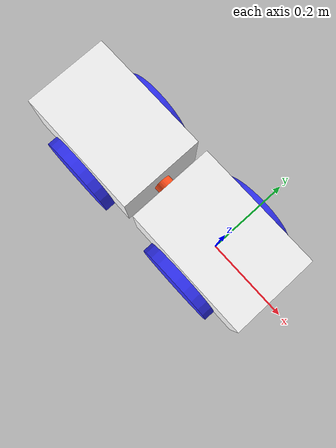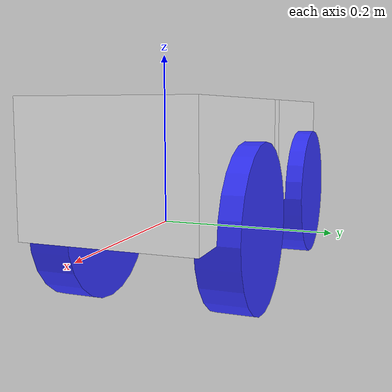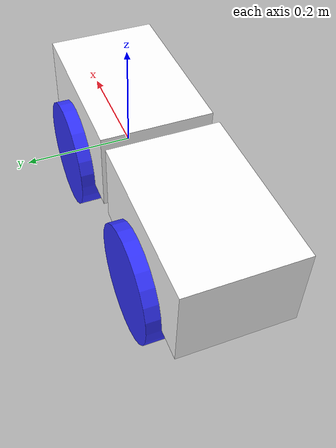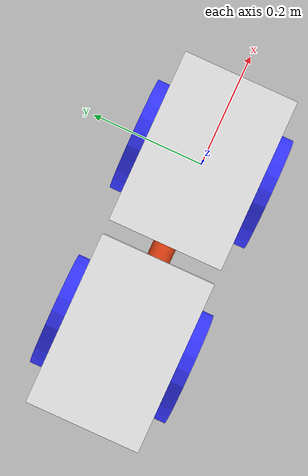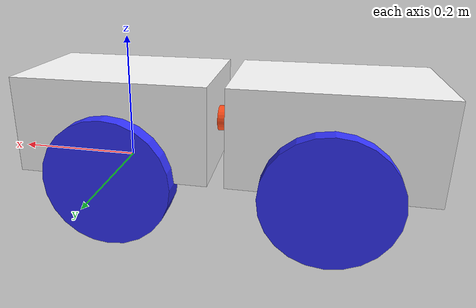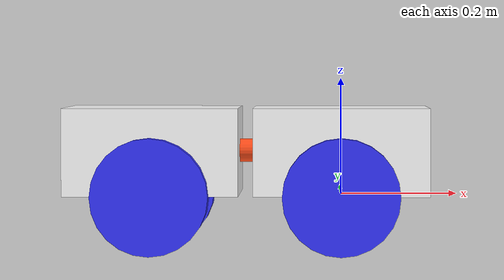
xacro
<?xml version="1.0"?>
<robot xmlns:xacro="http://www.ros.org/wiki/xacro" >

    <xacro:include filename="inertial_macros.xacro"/>

    <material name="white">
        <color rgba="1 1 1 1" />
    </material>

    <material name="orange">
        <color rgba="1 0.3 0.1 1"/>
    </material>

    <material name="blue">
        <color rgba="0.2 0.2 1 1"/>
    </material>

    <material name="black">
        <color rgba="0 0 0 1"/>
    </material>

    <!-- BASE LINK -->

    <link name="base_link">

    </link>

    <!-- CHASSIS LINK -->

    <joint name="chassis_joint" type="fixed">
        <parent link="base_link"/>
        <child link="chassis"/>
        <origin xyz="-0.15 0 0"/>
    </joint>

    <link name="chassis">
        <visual>
            <origin xyz="0.15 0 0.075"/>
            <geometry>
                <box size="0.3 0.2 0.15"/>
            </geometry>
            <material name="white"/>
        </visual>
        <collision>
            <origin xyz="0.15 0 0.075"/>
            <geometry>
                <box size="0.3 0.2 0.15"/>
            </geometry>
        </collision>
        <xacro:inertial_box mass="1" x="0.3" y="0.2" z="0.15">
            <origin xyz="0.15 0 0.075" rpy="0 0 0"/>
        </xacro:inertial_box>
    </link>

    <gazebo reference="chassis">
        <material>
            Gazebo/White
        </material>
    </gazebo>
    <!-- LEFT WHEEL LINK -->
    <joint name="left_wheel_joint" type="continuous">
        <parent link="base_link"/>
        <child link="l_frontwheel"/>
        <origin xyz="0.0 0.1 0.0" rpy="-${pi/2} 0.0 0.0"/>
        <axis xyz="0.0 0.0 1.0"/>
    </joint>

    <link name="l_frontwheel">
        <visual>
            <geometry>
                <cylinder radius="0.10" length="0.05"/>
            </geometry>
            <material name="blue"/>
        </visual>
        <collision>
            <geometry>
                <cylinder radius="0.10" length="0.05"/>
            </geometry>
        </collision>
        <xacro:inertial_cylinder mass="0.1" length="0.5" radius="0.1">
            <origin xyz="0 0 0" rpy="0 0 0"/>
        </xacro:inertial_cylinder>
    </link>

    <gazebo reference="l_frontwheel">
        <material>
            Gazebo/Blue
        </material>
    </gazebo>
    <!-- RIGHT WHEEL LINK -->
    <joint name="right_wheel_joint" type="continuous">
        <parent link="base_link"/>
        <child link="r_frontwheel"/>
        <origin xyz="0.0 -0.1 0.0" rpy="${pi/2} 0.0 0.0"/>
        <axis xyz="0.0 0.0 -1.0"/>
    </joint>

    <link name="r_frontwheel">
        <visual>
            <geometry>
                <cylinder radius="0.10" length="0.05"/>
            </geometry>
            <material name="blue"/>
        </visual>
        <collision>
            <geometry>
                <cylinder radius="0.10" length="0.05"/>
            </geometry>
        </collision>
        <xacro:inertial_cylinder mass="0.1" length="0.05" radius="0.1">
            <origin xyz="0 0 0" rpy="0 0 0"/>
        </xacro:inertial_cylinder>
    </link>

    <gazebo reference="r_frontwheel">
        <material>
            Gazebo/Blue
        </material>
    </gazebo>
    <!-- PIPE LINK -->
    <joint name="pipe_joint" type="fixed">
        <parent link="base_link"/>
        <child link="pipe"/>
        <origin xyz="-0.15 0.0 0.075"/>
    </joint>

    <link name="pipe">
        <visual>
            <origin rpy="0.0 ${pi/2} 0.0"/>
            <geometry>
                <cylinder radius="0.02" length="0.05"/>
            </geometry>
            <material name="orange"/>
        </visual>
        <collision>
            <origin rpy="0.0 ${pi/2} 0.0"/>
            <geometry>
                <cylinder radius="0.02" length="0.05"/>
            </geometry>
        </collision>
        <xacro:inertial_cylinder mass="0.1" length="0.05" radius="0.02">
            <origin xyz="0 0 0" rpy="0 0 0"/>
        </xacro:inertial_cylinder>
    </link>

    <gazebo reference="pipe">
        <material>
            Gazebo/Orange
        </material>
    </gazebo>
    <!-- BACKWARD BASELINK -->
    <joint name="backward_base_joint" type="fixed">
        <parent link="pipe"/>
        <child link="backward_base"/>
        <origin xyz="-0.175 0.0 -0.075"/>
    </joint>

    <link name="backward_base">

    </link>

    <!-- BACKWARD CHASSIS LINK-->
    <joint name="backward_chassis_joint" type="fixed">
        <parent link="backward_base"/>
        <child link="backward_chassis"/>
        <origin xyz="-0.15 0 0"/>
    </joint>
    <link name="backward_chassis">
        <visual>
            <origin xyz="0.15 0 0.075"/>
            <geometry>
                <box size="0.3 0.2 0.15"/>
            </geometry>
            <material name="white"/>
        </visual>
        <collision>
            <origin xyz="0.15 0 0.075"/>
            <geometry>
                <box size="0.3 0.2 0.15"/>
            </geometry>
        </collision>
        <xacro:inertial_box mass="1" x="0.3" y="0.2" z="0.15">
            <origin xyz="0.15 0 0.075" rpy="0 0 0"/>
        </xacro:inertial_box>
    </link>

    <gazebo reference="backward_chassis">
        <material>
            Gazebo/White
        </material>
    </gazebo>
    <!-- BACKWARD LEFT WHEEL LINK -->
    <joint name="backward_left_wheel_joint" type="continuous">
        <parent link="backward_base"/>
        <child link="l_backwheel"/>
        <origin xyz="0.0 0.1 0.0" rpy="-${pi/2} 0.0 0.0"/>
        <axis xyz="0.0 0.0 1.0"/>
    </joint>

    <link name="l_backwheel">
        <visual>
            <geometry>
                <cylinder radius="0.1" length="0.05"/>
            </geometry>
            <material name="blue"/>
        </visual>
        <collision>
            <geometry>
                <cylinder radius="0.1" length="0.05"/>
            </geometry>
        </collision>
        <xacro:inertial_cylinder mass="0.1" length="0.5" radius="0.1">
            <origin xyz="0 0 0" rpy="0 0 0"/>
        </xacro:inertial_cylinder>
    </link>

    <gazebo reference="l_backwheel">
        <material>
            Gazebo/Blue
        </material>
        <mu1 value="0.0000001"/>
        <mu2 value="0.0000001"/>
    </gazebo>
    <!--BACKWARD RIGHT WHEEL LINK -->
    <joint name="backward_right_wheel_joint" type="continuous">
        <parent link="backward_base"/>
        <child link="r_backwheel"/>
        <origin xyz="0.0 -0.1 0.0" rpy="${pi/2} 0.0 0.0"/>
        <axis xyz="0.0 0.0 -1.0"/>
    </joint>

    <link name="r_backwheel">
        <visual>
            <geometry>
                <cylinder radius="0.1" length="0.05"/>
            </geometry>
            <material name="blue"/>
        </visual>
        <collision>
            <geometry>
                <cylinder radius="0.1" length="0.05"/>
            </geometry>
        </collision>
        <xacro:inertial_cylinder mass="0.1" length="0.05" radius="0.1">
            <origin xyz="0 0 0" rpy="0 0 0"/>
        </xacro:inertial_cylinder>
    </link>
    <gazebo reference="r_backwheel">
        <material>
            Gazebo/Blue
        </material>
        <mu1 value="0.0000001"/>
        <mu2 value="0.0000001"/>
    </gazebo>
</robot>
